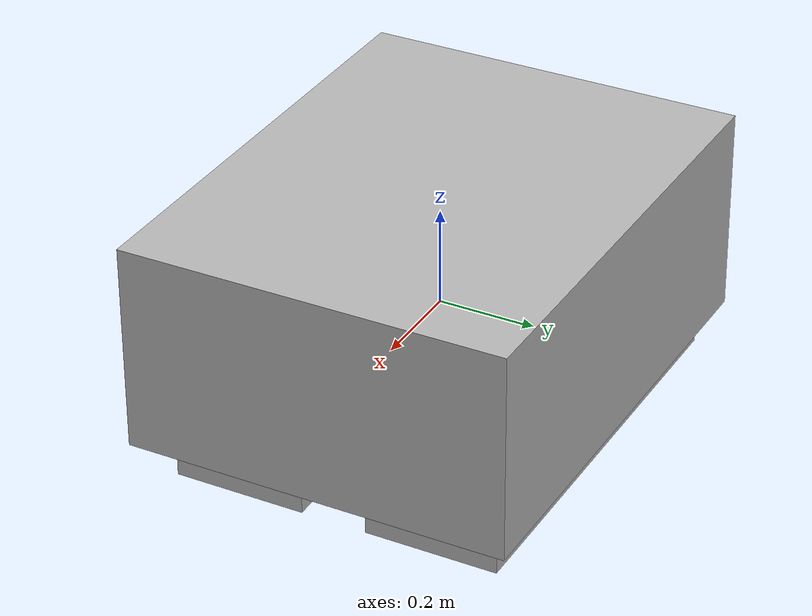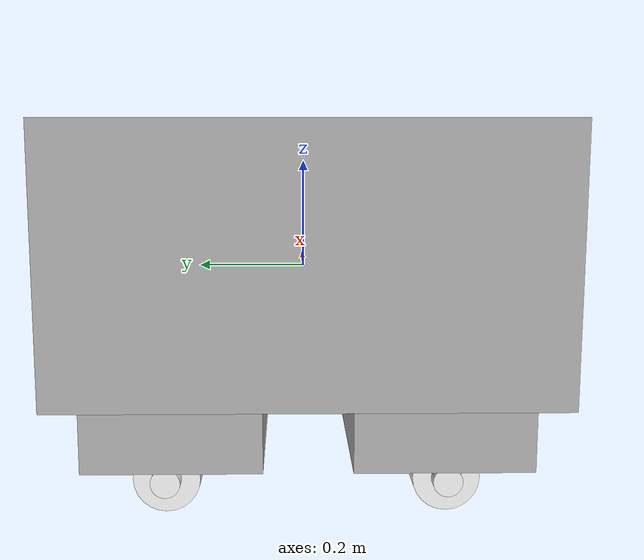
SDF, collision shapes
<?xml version="1.0"?>
<sdf version="1.6">
  <model name="usv">
    <link name="base_link">
      <inertial>
        <pose>0 0 -0.2 0 0 0</pose>
        <mass>10</mass>
        <inertia>
          <ixx>0.5666666666666668</ixx>
          <ixy>0</ixy>
          <ixz>0</ixz>
          <iyy>1.0416666666666667</iyy>
          <iyz>0</iyz>
          <izz>1.5416666666666667</izz>
        </inertia>
      </inertial>
      <visual name="visual">
        <geometry>
           <mesh>
            <uri>file://usv/meshes/usv.dae</uri>
            <scale>0.1 0.1 0.1</scale>
          </mesh>
        </geometry>
          <!-- fallback to script if no PBR support-->
      </visual>

      <collision name="Box011">
        <pose>-0.020046 0.204338 -0.1352701 0.0 0.0 0.0</pose>
        <geometry>
          <box>
            <size>0.89985 0.273203 0.232172</size>
          </box>
        </geometry>
      </collision>
      <collision name="Box012">
        <pose>-0.020046 -0.20434 -0.1352701 0.0 0.0 0.0</pose>
        <geometry>
          <box>
            <size>0.89985 0.273203 0.232172</size>
          </box>
        </geometry>
      </collision>
      <collision name="Box013">
        <pose>0.0099115 0.0 0.060029 0.0 0.0 0.0</pose>
        <geometry>
          <box>
            <size>0.998409 0.789244 0.4260934</size>
          </box>
        </geometry>
      </collision>

      <sensor name="navsat" type="navsat">
        <pose>0.3 0.0 0.25 0 0 0</pose>
        <always_on>1</always_on>
        <update_rate>1</update_rate>
      </sensor>

      <sensor name="imu" type="imu">
        <pose>0.2 0.0 0.25 0 0 0</pose>
        <always_on>1</always_on>
        <update_rate>1</update_rate>
      </sensor>

      <sensor name='gpu_lidar' type='gpu_lidar'>
        <pose>0.2 0.0 0.55 0 0 0</pose>
        <topic>lidar</topic>
        <update_rate>10</update_rate>
        <lidar>
          <scan>
            <horizontal>
              <samples>640</samples>
              <resolution>1</resolution>
              <min_angle>-3.14</min_angle>
              <max_angle>3.14</max_angle>
            </horizontal>
            <vertical>
              <samples>16</samples>
              <resolution>1</resolution>
              <min_angle>-0.261799</min_angle>
              <max_angle>0.261799</max_angle>
            </vertical>
          </scan>
          <range>
            <min>0.08</min>
            <max>10.0</max>
            <resolution>0.01</resolution>
          </range>
        </lidar>
        <alwaysOn>1</alwaysOn>
        <visualize>true</visualize>
        <plugin
          filename="RosGzPointCloud"
          name="ros_gz_point_cloud::PointCloud">
          <namespace>custom_params</namespace>
          <topic>pc2</topic>
          <frame_id>custom_params/link</frame_id>
        </plugin>
      </sensor>

      <sensor name="rgbd_camera" type="rgbd_camera">
        <pose>0.55 0 0.25 0 0 0</pose>
        <camera>
          <horizontal_fov>1.047</horizontal_fov>
          <image>
            <width>320</width>
            <height>240</height>
          </image>
          <clip>
            <near>0.1</near>
            <far>100</far>
          </clip>
        </camera>
        <always_on>1</always_on>
        <update_rate>30</update_rate>
        <visualize>true</visualize>
        <topic>zed_rgbd</topic>
        <plugin
          filename="RosGzPointCloud"
          name="ros_gz_point_cloud::PointCloud">
          <namespace>custom_params</namespace>
          <topic>pc2</topic>
          <frame_id>map</frame_id>
        </plugin>
      </sensor>

    </link>

    <!-- Left thruster housing -->
    <link name="left_housing_link">
      <inertial>
        <pose>-0.3 0.23 -0.31 0 0 0</pose>
        <mass>1</mass>
        <inertia>
          <ixx>0.0020290833333333333</ixx>
          <ixy>0</ixy>
          <ixz>0</ixz>
          <iyy>0.002408333333333333</iyy>
          <iyz>0</iyz>
          <izz>0.0006874166666666666</izz>
        </inertia>
      </inertial>

      <visual name="left_housing_visual">
        <pose>-0.3 0.23 -0.31 0 0 0</pose>
        <geometry>
           <mesh>
            <uri>file://usv/meshes/housing.dae</uri>
          </mesh>
        </geometry>
        <material>
          <diffuse>1.0 1.0 1.0</diffuse>
          <specular>1.0 1.0 1.0</specular>
          <pbr>
            <metal>
              <albedo_map>file://usv/materials/textures/Thruster_Albedo.png</albedo_map>
              <roughness_map>file://usv/materials/textures/Thruster_Roughness.png</roughness_map>
            </metal>
          </pbr>
        </material>
      </visual>

      <collision name="Cylinder263d">
        <pose>-0.2833463 0.22986701 -0.31 1.5708 0.0 -1.5708</pose>
        <geometry>
          <cylinder>
            <length>0.14376</length>
            <radius>0.0243692</radius>
          </cylinder>
        </geometry>
      </collision>
    </link>

    <!-- Left propeller -->
    <link name="left_prop_link">
      <inertial>
        <pose>-0.300872875 0.229867016 -0.31 1.5708 0.0 -1.5708</pose>
        <mass>0.1</mass>
        <inertia>
          <ixx>0.00010562499999999999</ixx>
          <ixy>0</ixy>
          <ixz>0</ixz>
          <iyy>0.00010562499999999999</iyy>
          <iyz>0</iyz>
          <izz>0.00015125000000000002</izz>
        </inertia>
      </inertial>
      <visual name="left_prop_visual">
        <pose>-0.3 0.23 -0.31 0 0 0</pose>
        <geometry>
           <mesh>
            <uri>file://usv/meshes/prop.dae</uri>
          </mesh>
        </geometry>
        <material>
          <diffuse>1.0 1.0 1.0</diffuse>
          <specular>1.0 1.0 1.0</specular>
          <pbr>
            <metal>
              <albedo_map>file://usv/materials/textures/Thruster_Albedo.png</albedo_map>
              <roughness_map>file://usv/materials/textures/Thruster_Roughness.png</roughness_map>
            </metal>
          </pbr>
        </material>
      </visual>

      <collision name="Cylinder262d">
        <pose>-0.300872875 0.229867016 -0.31 1.5708 0.0 -1.5708</pose>
        <geometry>
          <cylinder>
            <length>0.0608172</length>
            <radius>0.0553844</radius>
          </cylinder>
        </geometry>
      </collision>
    </link>

    <!-- Right thruster housing -->
    <link name="right_housing_link">
      <inertial>
        <pose>-0.3 -0.23 -0.31 0 0 0</pose>
        <mass>1</mass>
        <inertia>
          <ixx>0.0020290833333333333</ixx>
          <ixy>0</ixy>
          <ixz>0</ixz>
          <iyy>0.002408333333333333</iyy>
          <iyz>0</iyz>
          <izz>0.0006874166666666666</izz>
        </inertia>
      </inertial>
      <visual name="right_housing_visual">
        <pose>-0.3 -0.23 -0.31 0 0 0</pose>
        <geometry>
           <mesh>
            <uri>file://usv/meshes/housing.dae</uri>
          </mesh>
        </geometry>
        <material>
          <diffuse>1.0 1.0 1.0</diffuse>
          <specular>1.0 1.0 1.0</specular>
          <pbr>
            <metal>
              <albedo_map>file://usv/materials/textures/Thruster_Albedo.png</albedo_map>
              <roughness_map>file://usv/materials/textures/Thruster_Roughness.png</roughness_map>
            </metal>
          </pbr>
        </material>
      </visual>

      <!-- Thruster collisions -->
      <collision name="Cylinder263i">
        <pose>-0.2833463 -0.22986701 -0.31 1.5708 0.0 -1.5708</pose>
        <geometry>
          <cylinder>
            <length>0.14376</length>
            <radius>0.0243692</radius>
          </cylinder>
        </geometry>
      </collision>
    </link>

    <!-- Right propeller -->
    <link name="right_prop_link">
      <inertial>
        <pose>-0.300872875 -0.229867016 -0.31 1.5708 0.0 -1.5708</pose>
        <mass>0.1</mass>
        <inertia>
          <ixx>0.00010562499999999999</ixx>
          <ixy>0</ixy>
          <ixz>0</ixz>
          <iyy>0.00010562499999999999</iyy>
          <iyz>0</iyz>
          <izz>0.00015125000000000002</izz>
        </inertia>
      </inertial>
      <visual name="right_prop_visual">
        <pose>-0.3 -0.23 -0.31 0 0 0</pose>
        <geometry>
           <mesh>
            <uri>file://usv/meshes/prop.dae</uri>
          </mesh>
        </geometry>
        <material>
          <diffuse>1.0 1.0 1.0</diffuse>
          <specular>1.0 1.0 1.0</specular>
          <pbr>
            <metal>
              <albedo_map>file://usv/materials/textures/Thruster_Albedo.png</albedo_map>
              <roughness_map>file://usv/materials/textures/Thruster_Roughness.png</roughness_map>
            </metal>
          </pbr>
        </material>
      </visual>

      <collision name="Cylinder262i">
        <pose>-0.300872875 -0.229867016 -0.31 1.5708 0.0 -1.5708</pose>
        <geometry>
          <cylinder>
            <length>0.0608172</length>
            <radius>0.0553844</radius>
          </cylinder>
        </geometry>
      </collision>
    </link>

    <!-- Chassis-left engine joint -->
    <joint name="left_chasis_engine_joint" type="revolute">
      <axis>
        <xyz>0 0 1</xyz>
        <limit>
          <lower>0</lower>
          <upper>0</upper>
          <effort>10</effort>
          <velocity>10</velocity>
        </limit>
      </axis>
      <parent>base_link</parent>
      <child>left_housing_link</child>
    </joint>

    <!-- Left joint housing-propeller -->
    <joint name="left_engine_propeller_joint" type="revolute">
      <pose>-0.300872875 0.229867016 -0.31 1.5708 0.0 0</pose>
      <axis>
        <xyz>1 0 0</xyz>
        <limit>
          <effort>100</effort>
          <velocity>100</velocity>
        </limit>
        <dynamics>
          <friction>0.05</friction>
          <damping>0.05</damping>
        </dynamics>
      </axis>
      <parent>left_housing_link</parent>
      <child>left_prop_link</child>
    </joint>

    <!-- Chassis-right engine joint -->
    <joint name="right_chasis_engine_joint" type="revolute">
      <axis>
        <xyz>0 0 1</xyz>
        <limit>
          <lower>0</lower>
          <upper>0</upper>
          <effort>10</effort>
          <velocity>10</velocity>
        </limit>
      </axis>
      <parent>base_link</parent>
      <child>right_housing_link</child>
    </joint>

    <!-- Right joint housing-propeller -->
    <joint name="right_engine_propeller_joint" type="revolute">
      <pose>-0.300872875 -0.229867016 -0.31 1.5708 0.0 0</pose>
      <axis>
        <xyz>1 0 0</xyz>
        <limit>
          <effort>100</effort>
          <velocity>100</velocity>
        </limit>
        <dynamics>
          <friction>0.05</friction>
          <damping>0.05</damping>
        </dynamics>
      </axis>
      <parent>right_housing_link</parent>
      <child>right_prop_link</child>
    </joint>

    <!-- Left hull -->
    <plugin
      filename="libSurface.so"
      name="vrx::Surface">
      <link_name>base_link</link_name>
      <hull_length>1.15</hull_length>
      <hull_radius>0.12</hull_radius>
      <fluid_level>0.1</fluid_level>
      <points>
        <point>0.68 0.204338 -0.1552701</point>
        <point>-0.465 0.204338 -0.1552701</point>
      </points>
      <wavefield>
        <topic>/vrx/wavefield/parameters</topic>
      </wavefield>
    </plugin>

    <!-- Right hull -->
    <plugin
      filename="libSurface.so"
      name="vrx::Surface">
      <link_name>base_link</link_name>
      <hull_length>1.15</hull_length>
      <hull_radius>0.12</hull_radius>
      <fluid_level>0.1</fluid_level>
      <points>
        <point>0.68 -0.204338 -0.1552701 </point>
        <point>-0.465 -0.204338 -0.1552701 </point>
      </points>
      <wavefield>
        <topic>/vrx/wavefield/parameters</topic>
      </wavefield>
    </plugin>

    <plugin
      filename="libSimpleHydrodynamics.so"
      name="vrx::SimpleHydrodynamics">
      <link_name>base_link</link_name>
      <!-- Added mass -->
      <xDotU>0.0</xDotU>
      <yDotV>0.0</yDotV>
      <nDotR>0.0</nDotR>
      <!-- Linear and quadratic drag -->
      <xU>4.0</xU>
      <xUU>6.0</xUU>
      <yV>4.0</yV>
      <yVV>4.0</yVV>
      <zW>20.0</zW>
      <kP>12.0</kP>
      <kPP>24.0</kPP>
      <mQ>36.0</mQ>
      <mQQ>35.0</mQQ>
      <nR>32.0</nR>
      <nRR>32.0</nRR>
    </plugin>

    <plugin
      filename="gz-sim-thruster-system"
      name="gz::sim::systems::Thruster">
      <joint_name>left_engine_propeller_joint</joint_name>
      <thrust_coefficient>0.0001</thrust_coefficient>
      <fluid_density>1000</fluid_density>
      <propeller_diameter>0.1</propeller_diameter>
      <velocity_control>true</velocity_control>
    </plugin>

    <plugin
      filename="gz-sim-thruster-system"
      name="gz::sim::systems::Thruster">
      <joint_name>right_engine_propeller_joint</joint_name>
      <thrust_coefficient>0.0001</thrust_coefficient>
      <fluid_density>1000</fluid_density>
      <propeller_diameter>0.1</propeller_diameter>
      <velocity_control>true</velocity_control>
    </plugin>
  </model>
</sdf>
